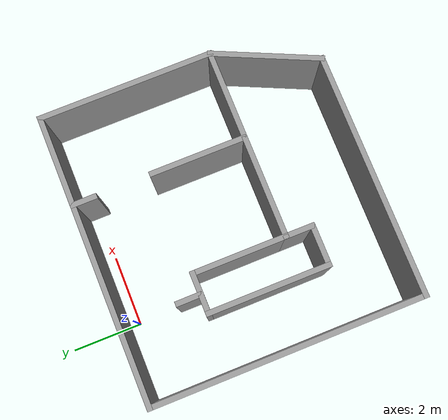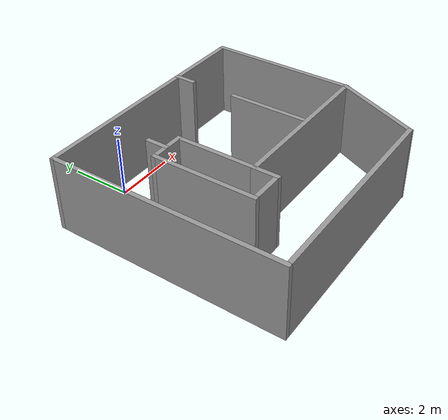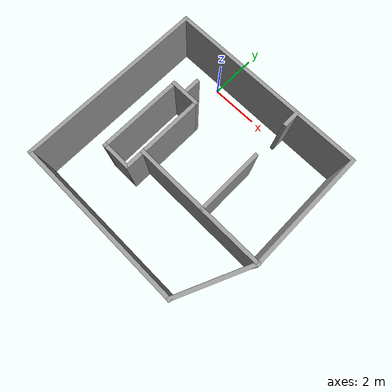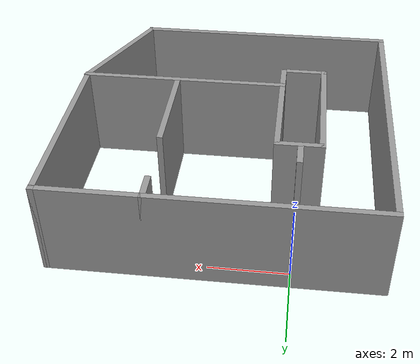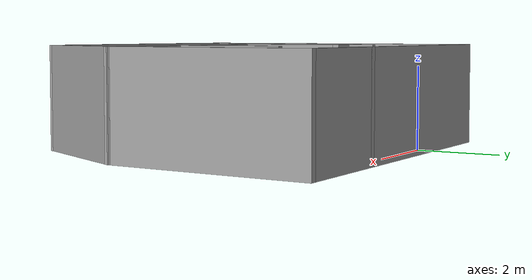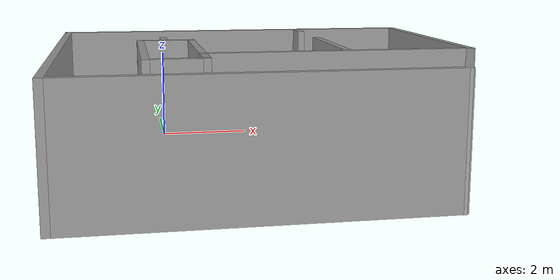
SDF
<?xml version='1.0'?>
<sdf version='1.6'>
  <model name='simple_world'>
    <pose frame=''>1.84023 -3.45741 0 0 -0 0</pose>
    <link name='Wall_0'>
      <collision name='Wall_0_Collision'>
        <geometry>
          <box>
            <size>8.25 0.15 2.5</size>
          </box>
        </geometry>
        <pose frame=''>0 0 1.25 0 -0 0</pose>
      </collision>
      <visual name='Wall_0_Visual'>
        <pose frame=''>0 0 1.25 0 -0 0</pose>
        <geometry>
          <box>
            <size>8.25 0.15 2.5</size>
          </box>
        </geometry>
        <material>
          <script>
            <uri>file://media/materials/scripts/gazebo.material</uri>
            <name>Gazebo/Grey</name>
          </script>
          <ambient>1 1 1 1</ambient>
        </material>
        <meta>
          <layer>0</layer>
        </meta>
      </visual>
      <pose frame=''>-0.012156 3.81216 0 0 -0 0</pose>
    </link>
    <link name='Wall_1'>
      <collision name='Wall_1_Collision'>
        <geometry>
          <box>
            <size>5 0.15 2.5</size>
          </box>
        </geometry>
        <pose frame=''>0 0 1.25 0 -0 0</pose>
      </collision>
      <visual name='Wall_1_Visual'>
        <pose frame=''>0 0 1.25 0 -0 0</pose>
        <geometry>
          <box>
            <size>5 0.15 2.5</size>
          </box>
        </geometry>
        <material>
          <script>
            <uri>file://media/materials/scripts/gazebo.material</uri>
            <name>Gazebo/Grey</name>
          </script>
          <ambient>1 1 1 1</ambient>
        </material>
        <meta>
          <layer>0</layer>
        </meta>
      </visual>
      <pose frame=''>4.03784 1.38716 0 0 0 -1.5708</pose>
    </link>
    <link name='Wall_10'>
      <collision name='Wall_10_Collision'>
        <geometry>
          <box>
            <size>7 0.15 2.5</size>
          </box>
        </geometry>
        <pose frame=''>0 0 1.25 0 -0 0</pose>
      </collision>
      <visual name='Wall_10_Visual'>
        <pose frame=''>0 0 1.25 0 -0 0</pose>
        <geometry>
          <box>
            <size>7 0.15 2.5</size>
          </box>
        </geometry>
        <material>
          <script>
            <uri>file://media/materials/scripts/gazebo.material</uri>
            <name>Gazebo/Grey</name>
          </script>
          <ambient>1 1 1 1</ambient>
        </material>
        <meta>
          <layer>0</layer>
        </meta>
      </visual>
      <pose frame=''>-0.637156 -3.78784 0 0 -0 0</pose>
    </link>
    <link name='Wall_11'>
      <collision name='Wall_11_Collision'>
        <geometry>
          <box>
            <size>3.17076 0.15 2.5</size>
          </box>
        </geometry>
        <pose frame=''>0 0 1.25 0 -0 0</pose>
      </collision>
      <visual name='Wall_11_Visual'>
        <pose frame=''>0 0 1.25 0 -0 0</pose>
        <geometry>
          <box>
            <size>3.17076 0.15 2.5</size>
          </box>
        </geometry>
        <material>
          <script>
            <uri>file://media/materials/scripts/gazebo.material</uri>
            <name>Gazebo/Grey</name>
          </script>
          <ambient>1 1 1 1</ambient>
        </material>
        <meta>
          <layer>0</layer>
        </meta>
      </visual>
      <pose frame=''>3.41284 -2.41284 0 0 -0 1.14417</pose>
    </link>
    <link name='Wall_13'>
      <collision name='Wall_13_Collision'>
        <geometry>
          <box>
            <size>2.75 0.15 2.5</size>
          </box>
        </geometry>
        <pose frame=''>0 0 1.25 0 -0 0</pose>
      </collision>
      <visual name='Wall_13_Visual'>
        <pose frame=''>0 0 1.25 0 -0 0</pose>
        <geometry>
          <box>
            <size>2.75 0.15 2.5</size>
          </box>
        </geometry>
        <material>
          <script>
            <uri>file://media/materials/scripts/gazebo.material</uri>
            <name>Gazebo/Grey</name>
          </script>
          <ambient>1 1 1 1</ambient>
        </material>
        <meta>
          <layer>0</layer>
        </meta>
      </visual>
      <pose frame=''>1.53466 0.290982 0 0 -0 1.5708</pose>
    </link>
    <link name='Wall_15'>
      <collision name='Wall_15_Collision'>
        <geometry>
          <box>
            <size>0.75 0.15 2.5</size>
          </box>
        </geometry>
        <pose frame=''>0 0 1.25 0 -0 0</pose>
      </collision>
      <visual name='Wall_15_Visual'>
        <pose frame=''>0 0 1.25 0 -0 0</pose>
        <geometry>
          <box>
            <size>0.75 0.15 2.5</size>
          </box>
        </geometry>
        <material>
          <script>
            <uri>file://media/materials/scripts/gazebo.material</uri>
            <name>Gazebo/Grey</name>
          </script>
          <ambient>1 1 1 1</ambient>
        </material>
        <meta>
          <layer>0</layer>
        </meta>
      </visual>
      <pose frame=''>1.51946 3.51216 0 0 0 -1.5708</pose>
    </link>
    <link name='Wall_17'>
      <collision name='Wall_17_Collision'>
        <geometry>
          <box>
            <size>0.75 0.15 2.5</size>
          </box>
        </geometry>
        <pose frame=''>0 0 1.25 0 -0 0</pose>
      </collision>
      <visual name='Wall_17_Visual'>
        <pose frame=''>0 0 1.25 0 -0 0</pose>
        <geometry>
          <box>
            <size>0.75 0.15 2.5</size>
          </box>
        </geometry>
        <material>
          <script>
            <uri>file://media/materials/scripts/gazebo.material</uri>
            <name>Gazebo/Grey</name>
          </script>
          <ambient>1 1 1 1</ambient>
        </material>
        <meta>
          <layer>0</layer>
        </meta>
      </visual>
      <pose frame=''>-1.88731 1.89168 0 0 -0 1.5708</pose>
    </link>
    <link name='Wall_2'>
      <collision name='Wall_2_Collision'>
        <geometry>
          <box>
            <size>5.5 0.15 2.5</size>
          </box>
        </geometry>
        <pose frame=''>0 0 1.25 0 -0 0</pose>
      </collision>
      <visual name='Wall_2_Visual'>
        <pose frame=''>0 0 1.25 0 -0 0</pose>
        <geometry>
          <box>
            <size>5.5 0.15 2.5</size>
          </box>
        </geometry>
        <material>
          <script>
            <uri>file://media/materials/scripts/gazebo.material</uri>
            <name>Gazebo/Grey</name>
          </script>
          <ambient>1 1 1 1</ambient>
        </material>
        <meta>
          <layer>0</layer>
        </meta>
      </visual>
      <pose frame=''>1.36284 -1.03784 0 0 -0 3.14159</pose>
    </link>
    <link name='Wall_3'>
      <collision name='Wall_3_Collision'>
        <geometry>
          <box>
            <size>2.75 0.15 2.5</size>
          </box>
        </geometry>
        <pose frame=''>0 0 1.25 0 -0 0</pose>
      </collision>
      <visual name='Wall_3_Visual'>
        <pose frame=''>0 0 1.25 0 -0 0</pose>
        <geometry>
          <box>
            <size>2.75 0.15 2.5</size>
          </box>
        </geometry>
        <material>
          <script>
            <uri>file://media/materials/scripts/gazebo.material</uri>
            <name>Gazebo/Grey</name>
          </script>
          <ambient>1 1 1 1</ambient>
        </material>
        <meta>
          <layer>0</layer>
        </meta>
      </visual>
      <pose frame=''>-1.31216 0.262156 0 0 -0 1.5708</pose>
    </link>
    <link name='Wall_4'>
      <collision name='Wall_4_Collision'>
        <geometry>
          <box>
            <size>1.25 0.15 2.5</size>
          </box>
        </geometry>
        <pose frame=''>0 0 1.25 0 -0 0</pose>
      </collision>
      <visual name='Wall_4_Visual'>
        <pose frame=''>0 0 1.25 0 -0 0</pose>
        <geometry>
          <box>
            <size>1.25 0.15 2.5</size>
          </box>
        </geometry>
        <material>
          <script>
            <uri>file://media/materials/scripts/gazebo.material</uri>
            <name>Gazebo/Grey</name>
          </script>
          <ambient>1 1 1 1</ambient>
        </material>
        <meta>
          <layer>0</layer>
        </meta>
      </visual>
      <pose frame=''>-1.86216 1.56216 0 0 -0 3.14159</pose>
    </link>
    <link name='Wall_5'>
      <collision name='Wall_5_Collision'>
        <geometry>
          <box>
            <size>3.5 0.15 2.5</size>
          </box>
        </geometry>
        <pose frame=''>0 0 1.25 0 -0 0</pose>
      </collision>
      <visual name='Wall_5_Visual'>
        <pose frame=''>0 0 1.25 0 -0 0</pose>
        <geometry>
          <box>
            <size>3.5 0.15 2.5</size>
          </box>
        </geometry>
        <material>
          <script>
            <uri>file://media/materials/scripts/gazebo.material</uri>
            <name>Gazebo/Grey</name>
          </script>
          <ambient>1 1 1 1</ambient>
        </material>
        <meta>
          <layer>0</layer>
        </meta>
      </visual>
      <pose frame=''>-2.41216 -0.112844 0 0 0 -1.5708</pose>
    </link>
    <link name='Wall_6'>
      <collision name='Wall_6_Collision'>
        <geometry>
          <box>
            <size>1.25 0.15 2.5</size>
          </box>
        </geometry>
        <pose frame=''>0 0 1.25 0 -0 0</pose>
      </collision>
      <visual name='Wall_6_Visual'>
        <pose frame=''>0 0 1.25 0 -0 0</pose>
        <geometry>
          <box>
            <size>1.25 0.15 2.5</size>
          </box>
        </geometry>
        <material>
          <script>
            <uri>file://media/materials/scripts/gazebo.material</uri>
            <name>Gazebo/Grey</name>
          </script>
          <ambient>1 1 1 1</ambient>
        </material>
        <meta>
          <layer>0</layer>
        </meta>
      </visual>
      <pose frame=''>-1.86216 -1.78784 0 0 -0 0</pose>
    </link>
    <link name='Wall_7'>
      <collision name='Wall_7_Collision'>
        <geometry>
          <box>
            <size>0.9 0.15 2.5</size>
          </box>
        </geometry>
        <pose frame=''>0 0 1.25 0 -0 0</pose>
      </collision>
      <visual name='Wall_7_Visual'>
        <pose frame=''>0 0 1.25 0 -0 0</pose>
        <geometry>
          <box>
            <size>0.9 0.15 2.5</size>
          </box>
        </geometry>
        <material>
          <script>
            <uri>file://media/materials/scripts/gazebo.material</uri>
            <name>Gazebo/Grey</name>
          </script>
          <ambient>1 1 1 1</ambient>
        </material>
        <meta>
          <layer>0</layer>
        </meta>
      </visual>
      <pose frame=''>-1.31216 -1.41284 0 0 -0 1.5708</pose>
    </link>
    <link name='Wall_9'>
      <collision name='Wall_9_Collision'>
        <geometry>
          <box>
            <size>7.75 0.15 2.5</size>
          </box>
        </geometry>
        <pose frame=''>0 0 1.25 0 -0 0</pose>
      </collision>
      <visual name='Wall_9_Visual'>
        <pose frame=''>0 0 1.25 0 -0 0</pose>
        <geometry>
          <box>
            <size>7.75 0.15 2.5</size>
          </box>
        </geometry>
        <material>
          <script>
            <uri>file://media/materials/scripts/gazebo.material</uri>
            <name>Gazebo/Grey</name>
          </script>
          <ambient>1 1 1 1</ambient>
        </material>
        <meta>
          <layer>0</layer>
        </meta>
      </visual>
      <pose frame=''>-4.06216 0.012156 0 0 0 -1.5708</pose>
    </link>
    <static>1</static>
  </model>
</sdf>
